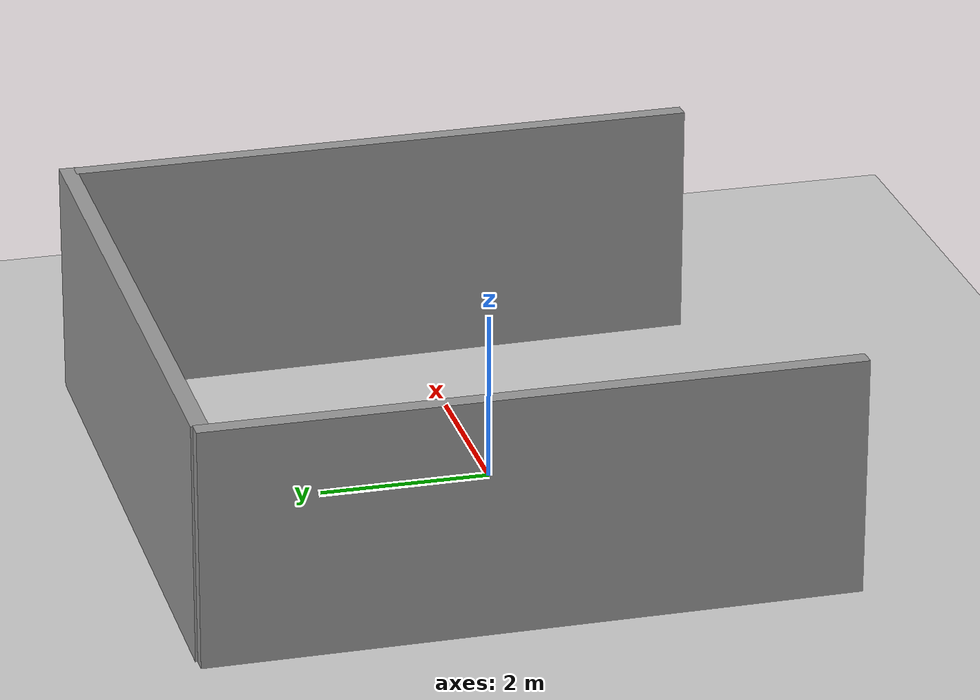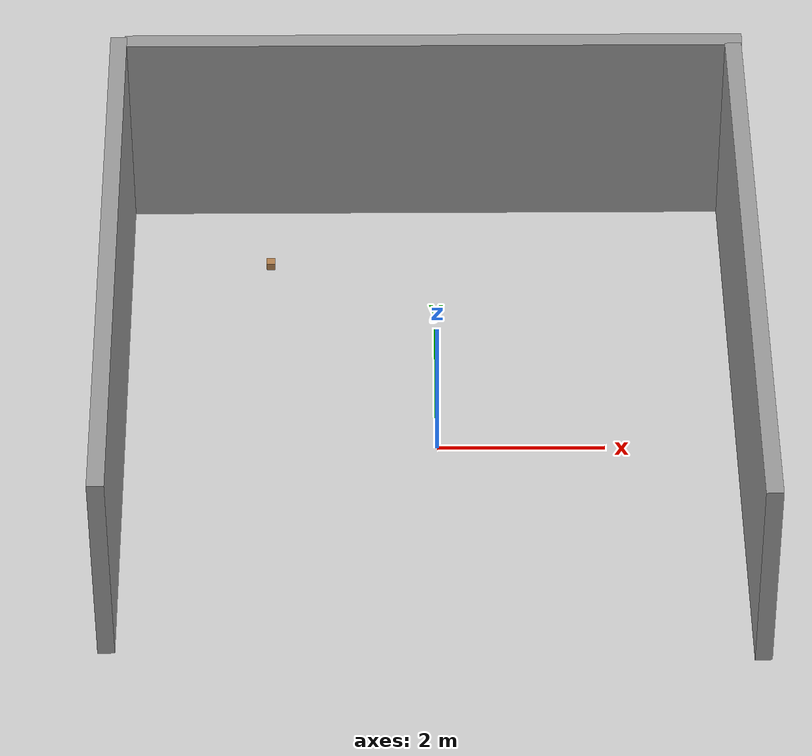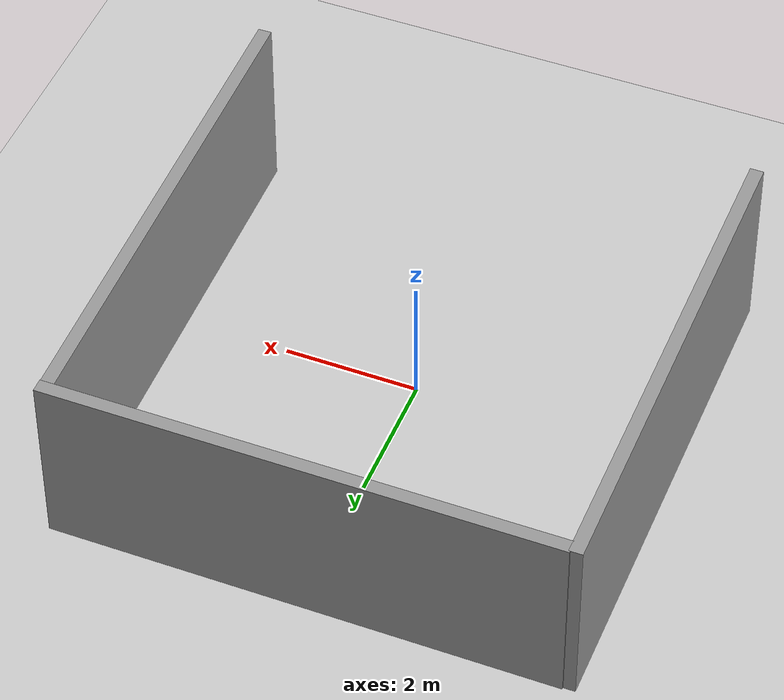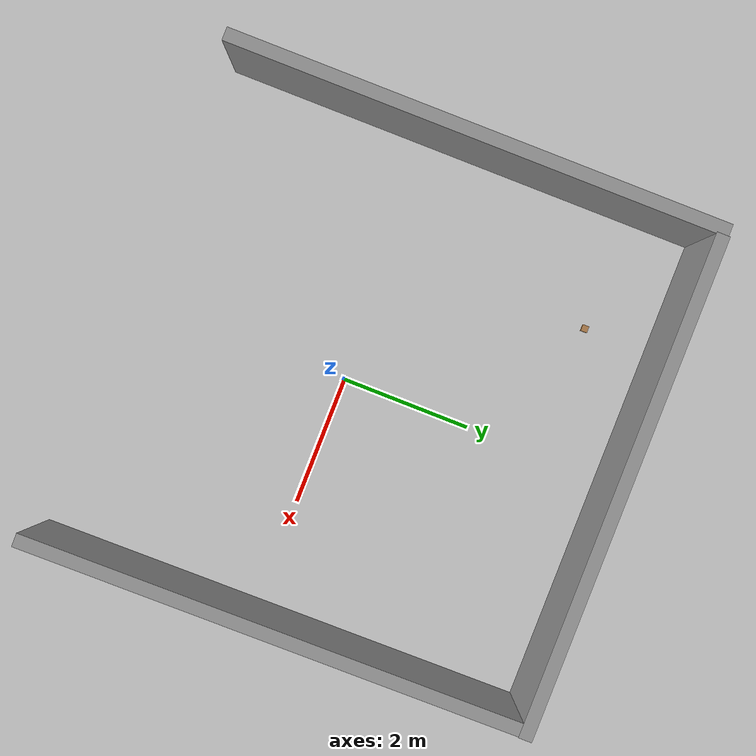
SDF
<sdf version="1.7">
 <world name="default">
  <model name="ground_plane">
   <static>1</static>
   <link name="link">
    <collision name="collision">
     <geometry><plane><normal>0 0 1</normal><size>100 100</size></plane></geometry>
     <surface>
      <contact><collide_bitmask>65535</collide_bitmask></contact>
      <friction><ode><mu>100</mu><mu2>50</mu2></ode></friction>
     </surface>
    </collision>
    <visual name="visual">
     <cast_shadows>0</cast_shadows>
     <geometry><plane><normal>0 0 1</normal><size>100 100</size></plane></geometry>
     <material>
      <script><uri>file://media/materials/scripts/gazebo.material</uri><name>Gazebo/Grey</name></script>
     </material>
    </visual>
   </link>
  </model>
  <model name="grey_wall_0">
   <static>1</static>
   <link name="link">
    <pose>0 0 1.4 0 -0 0</pose>
    <collision name="collision"><geometry><box><size>7.5 0.2 2.8</size></box></geometry></collision>
    <visual name="visual">
     <cast_shadows>0</cast_shadows>
     <geometry><box><size>7.5 0.2 2.8</size></box></geometry>
     <material>
      <script>
       <uri>model://grey_wall/materials/scripts</uri>
       <uri>model://grey_wall/materials/textures</uri>
       <name>vrc/grey_wall</name>
      </script>
     </material>
    </visual>
   </link>
   <pose>-0.028319 4.18007 0 0 -0 0</pose>
  </model>
  <model name="grey_wall_1">
   <static>1</static>
   <link name="link">
    <pose>0 0 1.4 0 -0 0</pose>
    <collision name="collision"><geometry><box><size>7.5 0.2 2.8</size></box></geometry></collision>
    <visual name="visual">
     <cast_shadows>0</cast_shadows>
     <geometry><box><size>7.5 0.2 2.8</size></box></geometry>
     <material>
      <script>
       <uri>model://grey_wall/materials/scripts</uri>
       <uri>model://grey_wall/materials/textures</uri>
       <name>vrc/grey_wall</name>
      </script>
     </material>
    </visual>
   </link>
   <pose>-3.84516 0.504038 0 0 0 -1.56885</pose>
  </model>
  <model name="grey_wall_2">
   <static>1</static>
   <link name="link">
    <pose>0 0 1.4 0 -0 0</pose>
    <collision name="collision"><geometry><box><size>7.5 0.2 2.8</size></box></geometry></collision>
    <visual name="visual">
     <cast_shadows>0</cast_shadows>
     <geometry><box><size>7.5 0.2 2.8</size></box></geometry>
     <material>
      <script>
       <uri>model://grey_wall/materials/scripts</uri>
       <uri>model://grey_wall/materials/textures</uri>
       <name>vrc/grey_wall</name>
      </script>
     </material>
    </visual>
   </link>
   <pose>3.66874 0.356645 0 0 0 -1.55577</pose>
  </model>
  <model name="wood_cube_10cm">
   <link name="link">
    <pose>0 0 0.05 0 -0 0</pose>
    <inertial>
     <mass>0.5167</mass>
     <inertia>
      <ixx>0.000861167</ixx>
      <ixy>0</ixy>
      <ixz>0</ixz>
      <iyy>0.000861167</iyy>
      <iyz>0</iyz>
      <izz>0.000861167</izz>
     </inertia>
    </inertial>
    <collision name="collision">
     <geometry><box><size>0.1 0.1 0.1</size></box></geometry>
     <surface>
      <contact>
       <poissons_ratio>0.347</poissons_ratio>
       <elastic_modulus>8.8e+09</elastic_modulus>
       <ode><kp>100000</kp><kd>100</kd><max_vel>100</max_vel><min_depth>0.001</min_depth></ode>
      </contact>
      <friction>
       <torsional>
        <coefficient>1</coefficient>
        <use_patch_radius>0</use_patch_radius>
        <surface_radius>0.01</surface_radius>
       </torsional>
      </friction>
     </surface>
    </collision>
    <visual name="visual">
     <geometry><box><size>0.1 0.1 0.1</size></box></geometry>
     <material>
      <script><uri>file://media/materials/scripts/gazebo.material</uri><name>Gazebo/Wood</name></script>
     </material>
    </visual>
   </link>
   <pose>-2.04327 3.11417 -0.001013 0 -0 0</pose>
  </model>
 </world>
</sdf>
